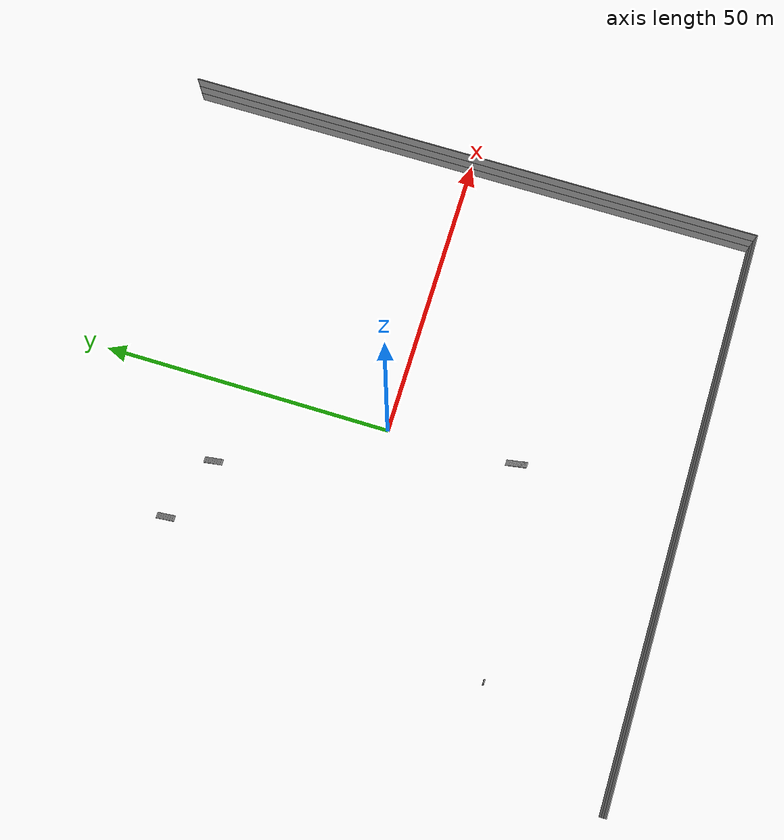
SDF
<sdf version="1.7">
 <model name="testx">
  <pose>-9.53854 -0.188873 0 0 -0 0</pose>
  <link name="Door_0">
   <collision name="Door_0_Collision">
    <geometry><box><size>0.9 0.17 2</size></box></geometry>
    <pose>0 0 1 0 -0 0</pose>
   </collision>
   <visual name="Door_0_Visual">
    <pose>0 0 1 0 -0 0</pose>
    <geometry><box><size>0.9 0.17 2</size></box></geometry>
    <material>
     <script><uri>file://media/materials/scripts/gazebo.material</uri><name>Gazebo/Grey</name></script>
    </material>
   </visual>
   <pose>-25.6922 -26.6179 0 0 -0 0</pose>
  </link>
  <link name="Stairs_0">
   <visual name="Stairs_0_Visual_0">
    <pose>-15.2378 32.5147 0.083333 0 -0 0</pose>
    <geometry><box><size>1 0.233333 0.166667</size></box></geometry>
    <material>
     <script><uri>file://media/materials/scripts/gazebo.material</uri><name>Gazebo/Grey</name></script>
     <ambient>1 1 1 1</ambient>
    </material>
    <meta><layer>0</layer></meta>
   </visual>
   <collision name="Stairs_0_Collision_0">
    <geometry><box><size>1 0.233333 0.166667</size></box></geometry>
    <pose>-15.2378 32.5147 0.083333 0 -0 0</pose>
   </collision>
   <visual name="Stairs_0_Visual_1">
    <pose>-15.2378 32.2814 0.25 0 -0 0</pose>
    <geometry><box><size>1 0.233333 0.166667</size></box></geometry>
    <material>
     <script><uri>file://media/materials/scripts/gazebo.material</uri><name>Gazebo/Grey</name></script>
     <ambient>1 1 1 1</ambient>
    </material>
    <meta><layer>0</layer></meta>
   </visual>
   <collision name="Stairs_0_Collision_1">
    <geometry><box><size>1 0.233333 0.166667</size></box></geometry>
    <pose>-15.2378 32.2814 0.25 0 -0 0</pose>
   </collision>
   <visual name="Stairs_0_Visual_2">
    <pose>-15.2378 32.0481 0.416667 0 -0 0</pose>
    <geometry><box><size>1 0.233333 0.166667</size></box></geometry>
    <material>
     <script><uri>file://media/materials/scripts/gazebo.material</uri><name>Gazebo/Grey</name></script>
     <ambient>1 1 1 1</ambient>
    </material>
    <meta><layer>0</layer></meta>
   </visual>
   <collision name="Stairs_0_Collision_2">
    <geometry><box><size>1 0.233333 0.166667</size></box></geometry>
    <pose>-15.2378 32.0481 0.416667 0 -0 0</pose>
   </collision>
   <visual name="Stairs_0_Visual_3">
    <pose>-15.2378 31.8147 0.583333 0 -0 0</pose>
    <geometry><box><size>1 0.233333 0.166667</size></box></geometry>
    <material>
     <script><uri>file://media/materials/scripts/gazebo.material</uri><name>Gazebo/Grey</name></script>
     <ambient>1 1 1 1</ambient>
    </material>
    <meta><layer>0</layer></meta>
   </visual>
   <collision name="Stairs_0_Collision_3">
    <geometry><box><size>1 0.233333 0.166667</size></box></geometry>
    <pose>-15.2378 31.8147 0.583333 0 -0 0</pose>
   </collision>
   <visual name="Stairs_0_Visual_4">
    <pose>-15.2378 31.5814 0.75 0 -0 0</pose>
    <geometry><box><size>1 0.233333 0.166667</size></box></geometry>
    <material>
     <script><uri>file://media/materials/scripts/gazebo.material</uri><name>Gazebo/Grey</name></script>
     <ambient>1 1 1 1</ambient>
    </material>
    <meta><layer>0</layer></meta>
   </visual>
   <collision name="Stairs_0_Collision_4">
    <geometry><box><size>1 0.233333 0.166667</size></box></geometry>
    <pose>-15.2378 31.5814 0.75 0 -0 0</pose>
   </collision>
   <visual name="Stairs_0_Visual_5">
    <pose>-15.2378 31.3481 0.916667 0 -0 0</pose>
    <geometry><box><size>1 0.233333 0.166667</size></box></geometry>
    <material>
     <script><uri>file://media/materials/scripts/gazebo.material</uri><name>Gazebo/Grey</name></script>
     <ambient>1 1 1 1</ambient>
    </material>
    <meta><layer>0</layer></meta>
   </visual>
   <collision name="Stairs_0_Collision_5">
    <geometry><box><size>1 0.233333 0.166667</size></box></geometry>
    <pose>-15.2378 31.3481 0.916667 0 -0 0</pose>
   </collision>
   <visual name="Stairs_0_Visual_6">
    <pose>-15.2378 31.1147 1.08333 0 -0 0</pose>
    <geometry><box><size>1 0.233333 0.166667</size></box></geometry>
    <material>
     <script><uri>file://media/materials/scripts/gazebo.material</uri><name>Gazebo/Grey</name></script>
     <ambient>1 1 1 1</ambient>
    </material>
    <meta><layer>0</layer></meta>
   </visual>
   <collision name="Stairs_0_Collision_6">
    <geometry><box><size>1 0.233333 0.166667</size></box></geometry>
    <pose>-15.2378 31.1147 1.08333 0 -0 0</pose>
   </collision>
   <visual name="Stairs_0_Visual_7">
    <pose>-15.2378 30.8814 1.25 0 -0 0</pose>
    <geometry><box><size>1 0.233333 0.166667</size></box></geometry>
    <material>
     <script><uri>file://media/materials/scripts/gazebo.material</uri><name>Gazebo/Grey</name></script>
     <ambient>1 1 1 1</ambient>
    </material>
    <meta><layer>0</layer></meta>
   </visual>
   <collision name="Stairs_0_Collision_7">
    <geometry><box><size>1 0.233333 0.166667</size></box></geometry>
    <pose>-15.2378 30.8814 1.25 0 -0 0</pose>
   </collision>
   <visual name="Stairs_0_Visual_8">
    <pose>-15.2378 30.6481 1.41667 0 -0 0</pose>
    <geometry><box><size>1 0.233333 0.166667</size></box></geometry>
    <material>
     <script><uri>file://media/materials/scripts/gazebo.material</uri><name>Gazebo/Grey</name></script>
     <ambient>1 1 1 1</ambient>
    </material>
    <meta><layer>0</layer></meta>
   </visual>
   <collision name="Stairs_0_Collision_8">
    <geometry><box><size>1 0.233333 0.166667</size></box></geometry>
    <pose>-15.2378 30.6481 1.41667 0 -0 0</pose>
   </collision>
   <visual name="Stairs_0_Visual_9">
    <pose>-15.2378 30.4147 1.58333 0 -0 0</pose>
    <geometry><box><size>1 0.233333 0.166667</size></box></geometry>
    <material>
     <script><uri>file://media/materials/scripts/gazebo.material</uri><name>Gazebo/Grey</name></script>
     <ambient>1 1 1 1</ambient>
    </material>
    <meta><layer>0</layer></meta>
   </visual>
   <collision name="Stairs_0_Collision_9">
    <geometry><box><size>1 0.233333 0.166667</size></box></geometry>
    <pose>-15.2378 30.4147 1.58333 0 -0 0</pose>
   </collision>
   <visual name="Stairs_0_Visual_10">
    <pose>-15.2378 30.1814 1.75 0 -0 0</pose>
    <geometry><box><size>1 0.233333 0.166667</size></box></geometry>
    <material>
     <script><uri>file://media/materials/scripts/gazebo.material</uri><name>Gazebo/Grey</name></script>
     <ambient>1 1 1 1</ambient>
    </material>
    <meta><layer>0</layer></meta>
   </visual>
   <collision name="Stairs_0_Collision_10">
    <geometry><box><size>1 0.233333 0.166667</size></box></geometry>
    <pose>-15.2378 30.1814 1.75 0 -0 0</pose>
   </collision>
   <visual name="Stairs_0_Visual_11">
    <pose>-15.2378 29.9481 1.91667 0 -0 0</pose>
    <geometry><box><size>1 0.233333 0.166667</size></box></geometry>
    <material>
     <script><uri>file://media/materials/scripts/gazebo.material</uri><name>Gazebo/Grey</name></script>
     <ambient>1 1 1 1</ambient>
    </material>
    <meta><layer>0</layer></meta>
   </visual>
   <collision name="Stairs_0_Collision_11">
    <geometry><box><size>1 0.233333 0.166667</size></box></geometry>
    <pose>-15.2378 29.9481 1.91667 0 -0 0</pose>
   </collision>
   <visual name="Stairs_0_Visual_12">
    <pose>-15.2378 29.7147 2.08333 0 -0 0</pose>
    <geometry><box><size>1 0.233333 0.166667</size></box></geometry>
    <material>
     <script><uri>file://media/materials/scripts/gazebo.material</uri><name>Gazebo/Grey</name></script>
     <ambient>1 1 1 1</ambient>
    </material>
    <meta><layer>0</layer></meta>
   </visual>
   <collision name="Stairs_0_Collision_12">
    <geometry><box><size>1 0.233333 0.166667</size></box></geometry>
    <pose>-15.2378 29.7147 2.08333 0 -0 0</pose>
   </collision>
   <visual name="Stairs_0_Visual_13">
    <pose>-15.2378 29.4814 2.25 0 -0 0</pose>
    <geometry><box><size>1 0.233333 0.166667</size></box></geometry>
    <material>
     <script><uri>file://media/materials/scripts/gazebo.material</uri><name>Gazebo/Grey</name></script>
     <ambient>1 1 1 1</ambient>
    </material>
    <meta><layer>0</layer></meta>
   </visual>
   <collision name="Stairs_0_Collision_13">
    <geometry><box><size>1 0.233333 0.166667</size></box></geometry>
    <pose>-15.2378 29.4814 2.25 0 -0 0</pose>
   </collision>
   <visual name="Stairs_0_Visual_14">
    <pose>-15.2378 29.2481 2.41667 0 -0 0</pose>
    <geometry><box><size>1 0.233333 0.166667</size></box></geometry>
    <material>
     <script><uri>file://media/materials/scripts/gazebo.material</uri><name>Gazebo/Grey</name></script>
     <ambient>1 1 1 1</ambient>
    </material>
    <meta><layer>0</layer></meta>
   </visual>
   <collision name="Stairs_0_Collision_14">
    <geometry><box><size>1 0.233333 0.166667</size></box></geometry>
    <pose>-15.2378 29.2481 2.41667 0 -0 0</pose>
   </collision>
  </link>
  <link name="Stairs_1">
   <visual name="Stairs_1_Visual_0">
    <pose>10.1515 -20.2551 0.083333 0 -0 0</pose>
    <geometry><box><size>1 0.233333 0.166667</size></box></geometry>
    <material>
     <script><uri>file://media/materials/scripts/gazebo.material</uri><name>Gazebo/Grey</name></script>
     <ambient>1 1 1 1</ambient>
    </material>
    <meta><layer>0</layer></meta>
   </visual>
   <collision name="Stairs_1_Collision_0">
    <geometry><box><size>1 0.233333 0.166667</size></box></geometry>
    <pose>10.1515 -20.2551 0.083333 0 -0 0</pose>
   </collision>
   <visual name="Stairs_1_Visual_1">
    <pose>10.1515 -20.4885 0.25 0 -0 0</pose>
    <geometry><box><size>1 0.233333 0.166667</size></box></geometry>
    <material>
     <script><uri>file://media/materials/scripts/gazebo.material</uri><name>Gazebo/Grey</name></script>
     <ambient>1 1 1 1</ambient>
    </material>
    <meta><layer>0</layer></meta>
   </visual>
   <collision name="Stairs_1_Collision_1">
    <geometry><box><size>1 0.233333 0.166667</size></box></geometry>
    <pose>10.1515 -20.4885 0.25 0 -0 0</pose>
   </collision>
   <visual name="Stairs_1_Visual_2">
    <pose>10.1515 -20.7218 0.416667 0 -0 0</pose>
    <geometry><box><size>1 0.233333 0.166667</size></box></geometry>
    <material>
     <script><uri>file://media/materials/scripts/gazebo.material</uri><name>Gazebo/Grey</name></script>
     <ambient>1 1 1 1</ambient>
    </material>
    <meta><layer>0</layer></meta>
   </visual>
   <collision name="Stairs_1_Collision_2">
    <geometry><box><size>1 0.233333 0.166667</size></box></geometry>
    <pose>10.1515 -20.7218 0.416667 0 -0 0</pose>
   </collision>
   <visual name="Stairs_1_Visual_3">
    <pose>10.1515 -20.9551 0.583333 0 -0 0</pose>
    <geometry><box><size>1 0.233333 0.166667</size></box></geometry>
    <material>
     <script><uri>file://media/materials/scripts/gazebo.material</uri><name>Gazebo/Grey</name></script>
     <ambient>1 1 1 1</ambient>
    </material>
    <meta><layer>0</layer></meta>
   </visual>
   <collision name="Stairs_1_Collision_3">
    <geometry><box><size>1 0.233333 0.166667</size></box></geometry>
    <pose>10.1515 -20.9551 0.583333 0 -0 0</pose>
   </collision>
   <visual name="Stairs_1_Visual_4">
    <pose>10.1515 -21.1885 0.75 0 -0 0</pose>
    <geometry><box><size>1 0.233333 0.166667</size></box></geometry>
    <material>
     <script><uri>file://media/materials/scripts/gazebo.material</uri><name>Gazebo/Grey</name></script>
     <ambient>1 1 1 1</ambient>
    </material>
    <meta><layer>0</layer></meta>
   </visual>
   <collision name="Stairs_1_Collision_4">
    <geometry><box><size>1 0.233333 0.166667</size></box></geometry>
    <pose>10.1515 -21.1885 0.75 0 -0 0</pose>
   </collision>
   <visual name="Stairs_1_Visual_5">
    <pose>10.1515 -21.4218 0.916667 0 -0 0</pose>
    <geometry><box><size>1 0.233333 0.166667</size></box></geometry>
    <material>
     <script><uri>file://media/materials/scripts/gazebo.material</uri><name>Gazebo/Grey</name></script>
     <ambient>1 1 1 1</ambient>
    </material>
    <meta><layer>0</layer></meta>
   </visual>
   <collision name="Stairs_1_Collision_5">
    <geometry><box><size>1 0.233333 0.166667</size></box></geometry>
    <pose>10.1515 -21.4218 0.916667 0 -0 0</pose>
   </collision>
   <visual name="Stairs_1_Visual_6">
    <pose>10.1515 -21.6551 1.08333 0 -0 0</pose>
    <geometry><box><size>1 0.233333 0.166667</size></box></geometry>
    <material>
     <script><uri>file://media/materials/scripts/gazebo.material</uri><name>Gazebo/Grey</name></script>
     <ambient>1 1 1 1</ambient>
    </material>
    <meta><layer>0</layer></meta>
   </visual>
   <collision name="Stairs_1_Collision_6">
    <geometry><box><size>1 0.233333 0.166667</size></box></geometry>
    <pose>10.1515 -21.6551 1.08333 0 -0 0</pose>
   </collision>
   <visual name="Stairs_1_Visual_7">
    <pose>10.1515 -21.8885 1.25 0 -0 0</pose>
    <geometry><box><size>1 0.233333 0.166667</size></box></geometry>
    <material>
     <script><uri>file://media/materials/scripts/gazebo.material</uri><name>Gazebo/Grey</name></script>
     <ambient>1 1 1 1</ambient>
    </material>
    <meta><layer>0</layer></meta>
   </visual>
   <collision name="Stairs_1_Collision_7">
    <geometry><box><size>1 0.233333 0.166667</size></box></geometry>
    <pose>10.1515 -21.8885 1.25 0 -0 0</pose>
   </collision>
   <visual name="Stairs_1_Visual_8">
    <pose>10.1515 -22.1218 1.41667 0 -0 0</pose>
    <geometry><box><size>1 0.233333 0.166667</size></box></geometry>
    <material>
     <script><uri>file://media/materials/scripts/gazebo.material</uri><name>Gazebo/Grey</name></script>
     <ambient>1 1 1 1</ambient>
    </material>
    <meta><layer>0</layer></meta>
   </visual>
   <collision name="Stairs_1_Collision_8">
    <geometry><box><size>1 0.233333 0.166667</size></box></geometry>
    <pose>10.1515 -22.1218 1.41667 0 -0 0</pose>
   </collision>
   <visual name="Stairs_1_Visual_9">
    <pose>10.1515 -22.3551 1.58333 0 -0 0</pose>
    <geometry><box><size>1 0.233333 0.166667</size></box></geometry>
    <material>
     <script><uri>file://media/materials/scripts/gazebo.material</uri><name>Gazebo/Grey</name></script>
     <ambient>1 1 1 1</ambient>
    </material>
    <meta><layer>0</layer></meta>
   </visual>
   <collision name="Stairs_1_Collision_9">
    <geometry><box><size>1 0.233333 0.166667</size></box></geometry>
    <pose>10.1515 -22.3551 1.58333 0 -0 0</pose>
   </collision>
   <visual name="Stairs_1_Visual_10">
    <pose>10.1515 -22.5885 1.75 0 -0 0</pose>
    <geometry><box><size>1 0.233333 0.166667</size></box></geometry>
    <material>
     <script><uri>file://media/materials/scripts/gazebo.material</uri><name>Gazebo/Grey</name></script>
     <ambient>1 1 1 1</ambient>
    </material>
    <meta><layer>0</layer></meta>
   </visual>
   <collision name="Stairs_1_Collision_10">
    <geometry><box><size>1 0.233333 0.166667</size></box></geometry>
    <pose>10.1515 -22.5885 1.75 0 -0 0</pose>
   </collision>
   <visual name="Stairs_1_Visual_11">
    <pose>10.1515 -22.8218 1.91667 0 -0 0</pose>
    <geometry><box><size>1 0.233333 0.166667</size></box></geometry>
    <material>
     <script><uri>file://media/materials/scripts/gazebo.material</uri><name>Gazebo/Grey</name></script>
     <ambient>1 1 1 1</ambient>
    </material>
    <meta><layer>0</layer></meta>
   </visual>
   <collision name="Stairs_1_Collision_11">
    <geometry><box><size>1 0.233333 0.166667</size></box></geometry>
    <pose>10.1515 -22.8218 1.91667 0 -0 0</pose>
   </collision>
   <visual name="Stairs_1_Visual_12">
    <pose>10.1515 -23.0551 2.08333 0 -0 0</pose>
    <geometry><box><size>1 0.233333 0.166667</size></box></geometry>
    <material>
     <script><uri>file://media/materials/scripts/gazebo.material</uri><name>Gazebo/Grey</name></script>
     <ambient>1 1 1 1</ambient>
    </material>
    <meta><layer>0</layer></meta>
   </visual>
   <collision name="Stairs_1_Collision_12">
    <geometry><box><size>1 0.233333 0.166667</size></box></geometry>
    <pose>10.1515 -23.0551 2.08333 0 -0 0</pose>
   </collision>
   <visual name="Stairs_1_Visual_13">
    <pose>10.1515 -23.2885 2.25 0 -0 0</pose>
    <geometry><box><size>1 0.233333 0.166667</size></box></geometry>
    <material>
     <script><uri>file://media/materials/scripts/gazebo.material</uri><name>Gazebo/Grey</name></script>
     <ambient>1 1 1 1</ambient>
    </material>
    <meta><layer>0</layer></meta>
   </visual>
   <collision name="Stairs_1_Collision_13">
    <geometry><box><size>1 0.233333 0.166667</size></box></geometry>
    <pose>10.1515 -23.2885 2.25 0 -0 0</pose>
   </collision>
   <visual name="Stairs_1_Visual_14">
    <pose>10.1515 -23.5218 2.41667 0 -0 0</pose>
    <geometry><box><size>1 0.233333 0.166667</size></box></geometry>
    <material>
     <script><uri>file://media/materials/scripts/gazebo.material</uri><name>Gazebo/Grey</name></script>
     <ambient>1 1 1 1</ambient>
    </material>
    <meta><layer>0</layer></meta>
   </visual>
   <collision name="Stairs_1_Collision_14">
    <geometry><box><size>1 0.233333 0.166667</size></box></geometry>
    <pose>10.1515 -23.5218 2.41667 0 -0 0</pose>
   </collision>
  </link>
  <link name="Stairs_2">
   <visual name="Stairs_2_Visual_0">
    <pose>-4.03663 28.0343 0.083333 0 -0 0</pose>
    <geometry><box><size>1 0.233333 0.166667</size></box></geometry>
    <material>
     <script><uri>file://media/materials/scripts/gazebo.material</uri><name>Gazebo/Grey</name></script>
     <ambient>1 1 1 1</ambient>
    </material>
    <meta><layer>0</layer></meta>
   </visual>
   <collision name="Stairs_2_Collision_0">
    <geometry><box><size>1 0.233333 0.166667</size></box></geometry>
    <pose>-4.03663 28.0343 0.083333 0 -0 0</pose>
   </collision>
   <visual name="Stairs_2_Visual_1">
    <pose>-4.03663 27.8009 0.25 0 -0 0</pose>
    <geometry><box><size>1 0.233333 0.166667</size></box></geometry>
    <material>
     <script><uri>file://media/materials/scripts/gazebo.material</uri><name>Gazebo/Grey</name></script>
     <ambient>1 1 1 1</ambient>
    </material>
    <meta><layer>0</layer></meta>
   </visual>
   <collision name="Stairs_2_Collision_1">
    <geometry><box><size>1 0.233333 0.166667</size></box></geometry>
    <pose>-4.03663 27.8009 0.25 0 -0 0</pose>
   </collision>
   <visual name="Stairs_2_Visual_2">
    <pose>-4.03663 27.5676 0.416667 0 -0 0</pose>
    <geometry><box><size>1 0.233333 0.166667</size></box></geometry>
    <material>
     <script><uri>file://media/materials/scripts/gazebo.material</uri><name>Gazebo/Grey</name></script>
     <ambient>1 1 1 1</ambient>
    </material>
    <meta><layer>0</layer></meta>
   </visual>
   <collision name="Stairs_2_Collision_2">
    <geometry><box><size>1 0.233333 0.166667</size></box></geometry>
    <pose>-4.03663 27.5676 0.416667 0 -0 0</pose>
   </collision>
   <visual name="Stairs_2_Visual_3">
    <pose>-4.03663 27.3343 0.583333 0 -0 0</pose>
    <geometry><box><size>1 0.233333 0.166667</size></box></geometry>
    <material>
     <script><uri>file://media/materials/scripts/gazebo.material</uri><name>Gazebo/Grey</name></script>
     <ambient>1 1 1 1</ambient>
    </material>
    <meta><layer>0</layer></meta>
   </visual>
   <collision name="Stairs_2_Collision_3">
    <geometry><box><size>1 0.233333 0.166667</size></box></geometry>
    <pose>-4.03663 27.3343 0.583333 0 -0 0</pose>
   </collision>
   <visual name="Stairs_2_Visual_4">
    <pose>-4.03663 27.1009 0.75 0 -0 0</pose>
    <geometry><box><size>1 0.233333 0.166667</size></box></geometry>
    <material>
     <script><uri>file://media/materials/scripts/gazebo.material</uri><name>Gazebo/Grey</name></script>
     <ambient>1 1 1 1</ambient>
    </material>
    <meta><layer>0</layer></meta>
   </visual>
   <collision name="Stairs_2_Collision_4">
    <geometry><box><size>1 0.233333 0.166667</size></box></geometry>
    <pose>-4.03663 27.1009 0.75 0 -0 0</pose>
   </collision>
   <visual name="Stairs_2_Visual_5">
    <pose>-4.03663 26.8676 0.916667 0 -0 0</pose>
    <geometry><box><size>1 0.233333 0.166667</size></box></geometry>
    <material>
     <script><uri>file://media/materials/scripts/gazebo.material</uri><name>Gazebo/Grey</name></script>
     <ambient>1 1 1 1</ambient>
    </material>
    <meta><layer>0</layer></meta>
   </visual>
   <collision name="Stairs_2_Collision_5">
    <geometry><box><size>1 0.233333 0.166667</size></box></geometry>
    <pose>-4.03663 26.8676 0.916667 0 -0 0</pose>
   </collision>
   <visual name="Stairs_2_Visual_6">
    <pose>-4.03663 26.6343 1.08333 0 -0 0</pose>
    <geometry><box><size>1 0.233333 0.166667</size></box></geometry>
    <material>
     <script><uri>file://media/materials/scripts/gazebo.material</uri><name>Gazebo/Grey</name></script>
     <ambient>1 1 1 1</ambient>
    </material>
    <meta><layer>0</layer></meta>
   </visual>
   <collision name="Stairs_2_Collision_6">
    <geometry><box><size>1 0.233333 0.166667</size></box></geometry>
    <pose>-4.03663 26.6343 1.08333 0 -0 0</pose>
   </collision>
   <visual name="Stairs_2_Visual_7">
    <pose>-4.03663 26.4009 1.25 0 -0 0</pose>
    <geometry><box><size>1 0.233333 0.166667</size></box></geometry>
    <material>
     <script><uri>file://media/materials/scripts/gazebo.material</uri><name>Gazebo/Grey</name></script>
     <ambient>1 1 1 1</ambient>
    </material>
    <meta><layer>0</layer></meta>
   </visual>
   <collision name="Stairs_2_Collision_7">
    <geometry><box><size>1 0.233333 0.166667</size></box></geometry>
    <pose>-4.03663 26.4009 1.25 0 -0 0</pose>
   </collision>
   <visual name="Stairs_2_Visual_8">
    <pose>-4.03663 26.1676 1.41667 0 -0 0</pose>
    <geometry><box><size>1 0.233333 0.166667</size></box></geometry>
    <material>
     <script><uri>file://media/materials/scripts/gazebo.material</uri><name>Gazebo/Grey</name></script>
     <ambient>1 1 1 1</ambient>
    </material>
    <meta><layer>0</layer></meta>
   </visual>
   <collision name="Stairs_2_Collision_8">
    <geometry><box><size>1 0.233333 0.166667</size></box></geometry>
    <pose>-4.03663 26.1676 1.41667 0 -0 0</pose>
   </collision>
   <visual name="Stairs_2_Visual_9">
    <pose>-4.03663 25.9343 1.58333 0 -0 0</pose>
    <geometry><box><size>1 0.233333 0.166667</size></box></geometry>
    <material>
     <script><uri>file://media/materials/scripts/gazebo.material</uri><name>Gazebo/Grey</name></script>
     <ambient>1 1 1 1</ambient>
    </material>
    <meta><layer>0</layer></meta>
   </visual>
   <collision name="Stairs_2_Collision_9">
    <geometry><box><size>1 0.233333 0.166667</size></box></geometry>
    <pose>-4.03663 25.9343 1.58333 0 -0 0</pose>
   </collision>
   <visual name="Stairs_2_Visual_10">
    <pose>-4.03663 25.7009 1.75 0 -0 0</pose>
    <geometry><box><size>1 0.233333 0.166667</size></box></geometry>
    <material>
     <script><uri>file://media/materials/scripts/gazebo.material</uri><name>Gazebo/Grey</name></script>
     <ambient>1 1 1 1</ambient>
    </material>
    <meta><layer>0</layer></meta>
   </visual>
   <collision name="Stairs_2_Collision_10">
    <geometry><box><size>1 0.233333 0.166667</size></box></geometry>
    <pose>-4.03663 25.7009 1.75 0 -0 0</pose>
   </collision>
   <visual name="Stairs_2_Visual_11">
    <pose>-4.03663 25.4676 1.91667 0 -0 0</pose>
    <geometry><box><size>1 0.233333 0.166667</size></box></geometry>
    <material>
     <script><uri>file://media/materials/scripts/gazebo.material</uri><name>Gazebo/Grey</name></script>
     <ambient>1 1 1 1</ambient>
    </material>
    <meta><layer>0</layer></meta>
   </visual>
   <collision name="Stairs_2_Collision_11">
    <geometry><box><size>1 0.233333 0.166667</size></box></geometry>
    <pose>-4.03663 25.4676 1.91667 0 -0 0</pose>
   </collision>
   <visual name="Stairs_2_Visual_12">
    <pose>-4.03663 25.2343 2.08333 0 -0 0</pose>
    <geometry><box><size>1 0.233333 0.166667</size></box></geometry>
    <material>
     <script><uri>file://media/materials/scripts/gazebo.material</uri><name>Gazebo/Grey</name></script>
     <ambient>1 1 1 1</ambient>
    </material>
    <meta><layer>0</layer></meta>
   </visual>
   <collision name="Stairs_2_Collision_12">
    <geometry><box><size>1 0.233333 0.166667</size></box></geometry>
    <pose>-4.03663 25.2343 2.08333 0 -0 0</pose>
   </collision>
   <visual name="Stairs_2_Visual_13">
    <pose>-4.03663 25.0009 2.25 0 -0 0</pose>
    <geometry><box><size>1 0.233333 0.166667</size></box></geometry>
    <material>
     <script><uri>file://media/materials/scripts/gazebo.material</uri><name>Gazebo/Grey</name></script>
     <ambient>1 1 1 1</ambient>
    </material>
    <meta><layer>0</layer></meta>
   </visual>
   <collision name="Stairs_2_Collision_13">
    <geometry><box><size>1 0.233333 0.166667</size></box></geometry>
    <pose>-4.03663 25.0009 2.25 0 -0 0</pose>
   </collision>
   <visual name="Stairs_2_Visual_14">
    <pose>-4.03663 24.7676 2.41667 0 -0 0</pose>
    <geometry><box><size>1 0.233333 0.166667</size></box></geometry>
    <material>
     <script><uri>file://media/materials/scripts/gazebo.material</uri><name>Gazebo/Grey</name></script>
     <ambient>1 1 1 1</ambient>
    </material>
    <meta><layer>0</layer></meta>
   </visual>
   <collision name="Stairs_2_Collision_14">
    <geometry><box><size>1 0.233333 0.166667</size></box></geometry>
    <pose>-4.03663 24.7676 2.41667 0 -0 0</pose>
   </collision>
  </link>
  <link name="Wall_12">
   <collision name="Wall_12_Collision">
    <geometry><box><size>99.5 0.15 2.5</size></box></geometry>
    <pose>0 0 1.25 0 -0 0</pose>
   </collision>
   <visual name="Wall_12_Visual">
    <pose>0 0 1.25 0 -0 0</pose>
    <geometry><box><size>99.5 0.15 2.5</size></box></geometry>
    <material>
     <script><uri>file://media/materials/scripts/gazebo.material</uri><name>Gazebo/Grey</name></script>
     <ambient>1 1 1 1</ambient>
    </material>
    <meta><layer>0</layer></meta>
   </visual>
   <pose>58.3 -0.124999 0 0 -0 -1.5708</pose>
  </link>
  <link name="Wall_13">
   <collision name="Wall_13_Collision">
    <geometry><box><size>98.75 0.15 2.5</size></box></geometry>
    <pose>0 0 1.25 0 -0 0</pose>
   </collision>
   <visual name="Wall_13_Visual">
    <pose>0 0 1.25 0 -0 0</pose>
    <geometry><box><size>98.75 0.15 2.5</size></box></geometry>
    <material>
     <script><uri>file://media/materials/scripts/gazebo.material</uri><name>Gazebo/Grey</name></script>
     <ambient>1 1 1 1</ambient>
    </material>
    <meta><layer>0</layer></meta>
   </visual>
   <pose>9 -49.8 0 0 -0 3.14159</pose>
  </link>
  <link name="Wall_17">
   <collision name="Wall_17_Collision">
    <geometry><box><size>99.5 0.15 2.5</size></box></geometry>
    <pose>0 0 1.25 0 -0 0</pose>
   </collision>
   <visual name="Wall_17_Visual">
    <pose>0 0 1.25 0 -0 0</pose>
    <geometry><box><size>99.5 0.15 2.5</size></box></geometry>
    <material>
     <script><uri>file://media/materials/scripts/gazebo.material</uri><name>Gazebo/Grey</name></script>
     <ambient>1 1 1 1</ambient>
    </material>
    <meta><layer>1</layer></meta>
   </visual>
   <pose>58.3 -0.124999 2.5 0 -0 -1.5708</pose>
  </link>
  <link name="Wall_18">
   <collision name="Wall_18_Collision">
    <geometry><box><size>98.75 0.15 2.5</size></box></geometry>
    <pose>0 0 1.25 0 -0 0</pose>
   </collision>
   <visual name="Wall_18_Visual">
    <pose>0 0 1.25 0 -0 0</pose>
    <geometry><box><size>98.75 0.15 2.5</size></box></geometry>
    <material>
     <script><uri>file://media/materials/scripts/gazebo.material</uri><name>Gazebo/Grey</name></script>
     <ambient>1 1 1 1</ambient>
    </material>
    <meta><layer>1</layer></meta>
   </visual>
   <pose>9 -49.8 2.5 0 -0 3.14159</pose>
  </link>
  <link name="Wall_21">
   <collision name="Wall_21_Collision">
    <geometry><box><size>99.5 0.15 2.5</size></box></geometry>
    <pose>0 0 1.25 0 -0 0</pose>
   </collision>
   <visual name="Wall_21_Visual">
    <pose>0 0 1.25 0 -0 0</pose>
    <geometry><box><size>99.5 0.15 2.5</size></box></geometry>
    <material>
     <script><uri>file://media/materials/scripts/gazebo.material</uri><name>Gazebo/Grey</name></script>
     <ambient>1 1 1 1</ambient>
    </material>
    <meta><layer>2</layer></meta>
   </visual>
   <pose>58.3 -0.124999 5 0 -0 -1.5708</pose>
  </link>
  <link name="Wall_22">
   <collision name="Wall_22_Collision">
    <geometry><box><size>98.75 0.15 2.5</size></box></geometry>
    <pose>0 0 1.25 0 -0 0</pose>
   </collision>
   <visual name="Wall_22_Visual">
    <pose>0 0 1.25 0 -0 0</pose>
    <geometry><box><size>98.75 0.15 2.5</size></box></geometry>
    <material>
     <script><uri>file://media/materials/scripts/gazebo.material</uri><name>Gazebo/Grey</name></script>
     <ambient>1 1 1 1</ambient>
    </material>
    <meta><layer>2</layer></meta>
   </visual>
   <pose>9 -49.8 5 0 -0 3.14159</pose>
  </link>
  <static>1</static>
 </model>
</sdf>
